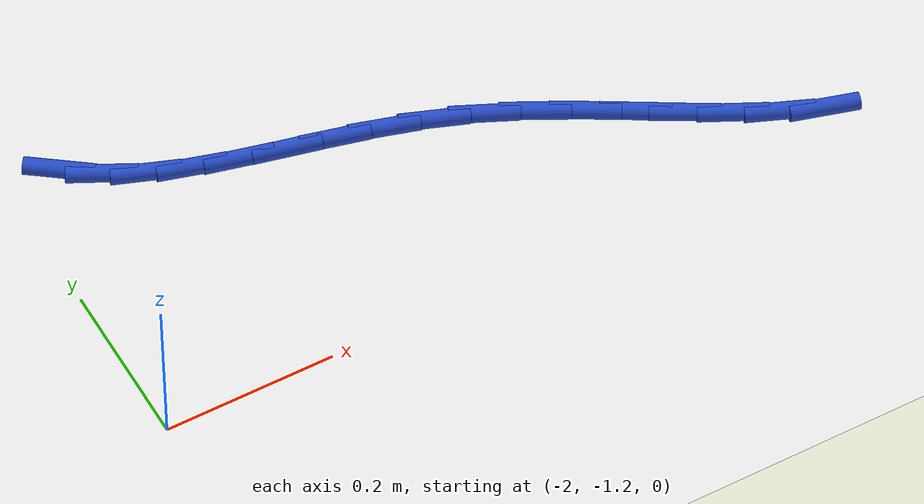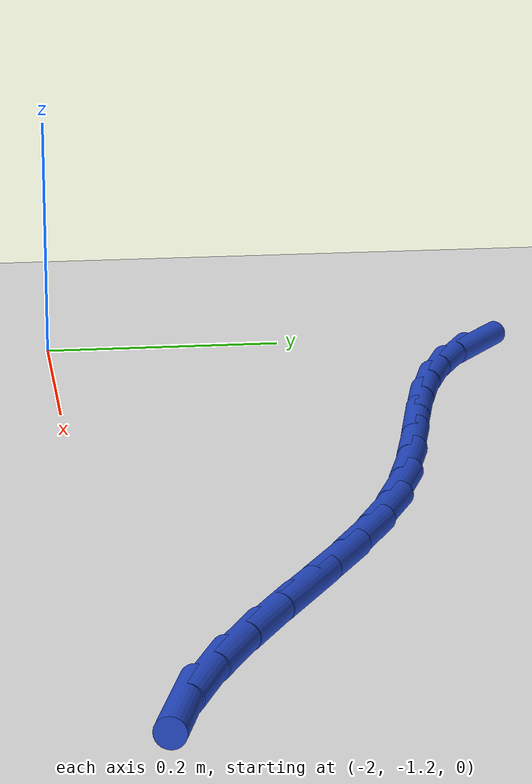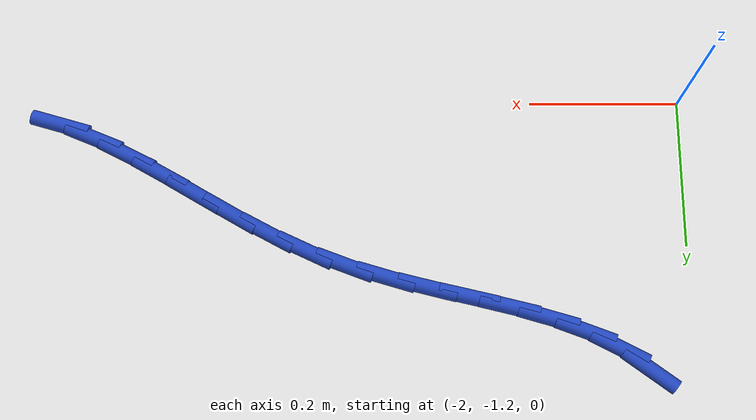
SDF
<sdf version="1.6">
 <world name="default">
  <model name="ground_plane">
   <static>1</static>
   <link name="link">
    <collision name="collision">
     <geometry><plane><normal>0 0 1</normal><size>100 100</size></plane></geometry>
     <surface><friction><ode><mu>100</mu><mu2>50</mu2></ode></friction></surface>
    </collision>
    <visual name="visual">
     <cast_shadows>0</cast_shadows>
     <geometry><plane><normal>0 0 1</normal><size>100 100</size></plane></geometry>
     <material>
      <script><uri>file://media/materials/scripts/gazebo.material</uri><name>Gazebo/WhiteGlow</name></script>
     </material>
    </visual>
   </link>
  </model>
  <model name="line">
   <link name="link_80">
    <pose>-1.9409610615038957 -0.835078091617651 0.01 0 1.57 -0.6349205361806385</pose>
    <collision name="collision">
     <geometry><cylinder><radius>0.01</radius><length>0.08</length></cylinder></geometry>
    </collision>
    <visual name="visual">
     <material>
      <script><name>Gazebo/Blue</name><uri>file://media/materials/scripts/gazebo.material</uri></script>
     </material>
     <geometry><cylinder><radius>0.01</radius><length>0.08</length></cylinder></geometry>
    </visual>
   </link>
   <link name="link_81">
    <pose>-1.9031851654351613 -0.8629067729834646 0.01 0 1.57 -0.47545376433622555</pose>
    <collision name="collision">
     <geometry><cylinder><radius>0.01</radius><length>0.08</length></cylinder></geometry>
    </collision>
    <visual name="visual">
     <material>
      <script><name>Gazebo/Blue</name><uri>file://media/materials/scripts/gazebo.material</uri></script>
     </material>
     <geometry><cylinder><radius>0.01</radius><length>0.08</length></cylinder></geometry>
    </visual>
   </link>
   <link name="link_82">
    <pose>-1.8603655976631395 -0.8849522570788549 0.01 0 1.57 -0.3588351381512396</pose>
    <collision name="collision">
     <geometry><cylinder><radius>0.01</radius><length>0.08</length></cylinder></geometry>
    </collision>
    <visual name="visual">
     <material>
      <script><name>Gazebo/Blue</name><uri>file://media/materials/scripts/gazebo.material</uri></script>
     </material>
     <geometry><cylinder><radius>0.01</radius><length>0.08</length></cylinder></geometry>
    </visual>
   </link>
   <link name="link_83">
    <pose>-1.8134151307783253 -0.9025621346845695 0.01 0 1.57 -0.28241887345072186</pose>
    <collision name="collision">
     <geometry><cylinder><radius>0.01</radius><length>0.08</length></cylinder></geometry>
    </collision>
    <visual name="visual">
     <material>
      <script><name>Gazebo/Blue</name><uri>file://media/materials/scripts/gazebo.material</uri></script>
     </material>
     <geometry><cylinder><radius>0.01</radius><length>0.08</length></cylinder></geometry>
    </visual>
   </link>
   <link name="link_84">
    <pose>-1.7632665685878584 -0.9171139956105313 0.01 0 1.57 -0.2408078761511981</pose>
    <collision name="collision">
     <geometry><cylinder><radius>0.01</radius><length>0.08</length></cylinder></geometry>
    </collision>
    <visual name="visual">
     <material>
      <script><name>Gazebo/Blue</name><uri>file://media/materials/scripts/gazebo.material</uri></script>
     </material>
     <geometry><cylinder><radius>0.01</radius><length>0.08</length></cylinder></geometry>
    </visual>
   </link>
   <link name="link_85">
    <pose>-1.7108527148988781 -0.929985429666665 0.01 0 1.57 -0.22972213244043924</pose>
    <collision name="collision">
     <geometry><cylinder><radius>0.01</radius><length>0.08</length></cylinder></geometry>
    </collision>
    <visual name="visual">
     <material>
      <script><name>Gazebo/Blue</name><uri>file://media/materials/scripts/gazebo.material</uri></script>
     </material>
     <geometry><cylinder><radius>0.01</radius><length>0.08</length></cylinder></geometry>
    </visual>
   </link>
   <link name="link_86">
    <pose>-1.657106373518521 -0.9425540266628943 0.01 0 1.57 -0.24683497186855474</pose>
    <collision name="collision">
     <geometry><cylinder><radius>0.01</radius><length>0.08</length></cylinder></geometry>
    </collision>
    <visual name="visual">
     <material>
      <script><name>Gazebo/Blue</name><uri>file://media/materials/scripts/gazebo.material</uri></script>
     </material>
     <geometry><cylinder><radius>0.01</radius><length>0.08</length></cylinder></geometry>
    </visual>
   </link>
   <link name="link_87">
    <pose>-1.6029603482539274 -0.9561973764091425 0.01 0 1.57 -0.29165905966030725</pose>
    <collision name="collision">
     <geometry><cylinder><radius>0.01</radius><length>0.08</length></cylinder></geometry>
    </collision>
    <visual name="visual">
     <material>
      <script><name>Gazebo/Blue</name><uri>file://media/materials/scripts/gazebo.material</uri></script>
     </material>
     <geometry><cylinder><radius>0.01</radius><length>0.08</length></cylinder></geometry>
    </visual>
   </link>
   <link name="link_88">
    <pose>-1.5493474429122347 -0.9722930687153338 0.01 0 1.57 -0.3642567691731395</pose>
    <collision name="collision">
     <geometry><cylinder><radius>0.01</radius><length>0.08</length></cylinder></geometry>
    </collision>
    <visual name="visual">
     <material>
      <script><name>Gazebo/Blue</name><uri>file://media/materials/scripts/gazebo.material</uri></script>
     </material>
     <geometry><cylinder><radius>0.01</radius><length>0.08</length></cylinder></geometry>
    </visual>
   </link>
   <link name="link_89">
    <pose>-1.497183749406189 -0.992181548556145 0.01 0 1.57 -0.44197632204330994</pose>
    <collision name="collision">
     <geometry><cylinder><radius>0.01</radius><length>0.08</length></cylinder></geometry>
    </collision>
    <visual name="visual">
     <material>
      <script><name>Gazebo/Blue</name><uri>file://media/materials/scripts/gazebo.material</uri></script>
     </material>
     <geometry><cylinder><radius>0.01</radius><length>0.08</length></cylinder></geometry>
    </visual>
   </link>
   <link name="link_90">
    <pose>-1.44684480487797 -1.0160017922144295 0.01 0 1.57 -0.4969489061325813</pose>
    <collision name="collision">
     <geometry><cylinder><radius>0.01</radius><length>0.08</length></cylinder></geometry>
    </collision>
    <visual name="visual">
     <material>
      <script><name>Gazebo/Blue</name><uri>file://media/materials/scripts/gazebo.material</uri></script>
     </material>
     <geometry><cylinder><radius>0.01</radius><length>0.08</length></cylinder></geometry>
    </visual>
   </link>
   <link name="link_91">
    <pose>-1.3980612624689825 -1.0424594190238794 0.01 0 1.57 -0.5278820999175212</pose>
    <collision name="collision">
     <geometry><cylinder><radius>0.01</radius><length>0.08</length></cylinder></geometry>
    </collision>
    <visual name="visual">
     <material>
      <script><name>Gazebo/Blue</name><uri>file://media/materials/scripts/gazebo.material</uri></script>
     </material>
     <geometry><cylinder><radius>0.01</radius><length>0.08</length></cylinder></geometry>
    </visual>
   </link>
   <link name="link_92">
    <pose>-1.3505259936615994 -1.0701760725900558 0.01 0 1.57 -0.5347325309358428</pose>
    <collision name="collision">
     <geometry><cylinder><radius>0.01</radius><length>0.08</length></cylinder></geometry>
    </collision>
    <visual name="visual">
     <material>
      <script><name>Gazebo/Blue</name><uri>file://media/materials/scripts/gazebo.material</uri></script>
     </material>
     <geometry><cylinder><radius>0.01</radius><length>0.08</length></cylinder></geometry>
    </visual>
   </link>
   <link name="link_93">
    <pose>-1.3039318699381932 -1.0977733965185215 0.01 0 1.57 -0.5164638592806371</pose>
    <collision name="collision">
     <geometry><cylinder><radius>0.01</radius><length>0.08</length></cylinder></geometry>
    </collision>
    <visual name="visual">
     <material>
      <script><name>Gazebo/Blue</name><uri>file://media/materials/scripts/gazebo.material</uri></script>
     </material>
     <geometry><cylinder><radius>0.01</radius><length>0.08</length></cylinder></geometry>
    </visual>
   </link>
   <link name="link_94">
    <pose>-1.257971762781135 -1.1238730344148378 0.01 0 1.57 -0.4707570323374574</pose>
    <collision name="collision">
     <geometry><cylinder><radius>0.01</radius><length>0.08</length></cylinder></geometry>
    </collision>
    <visual name="visual">
     <material>
      <script><name>Gazebo/Blue</name><uri>file://media/materials/scripts/gazebo.material</uri></script>
     </material>
     <geometry><cylinder><radius>0.01</radius><length>0.08</length></cylinder></geometry>
    </visual>
   </link>
   <link name="link_95">
    <pose>-1.2123385436727985 -1.1470966298845664 0.01 0 1.57 -0.39411075076043034</pose>
    <collision name="collision">
     <geometry><cylinder><radius>0.01</radius><length>0.08</length></cylinder></geometry>
    </collision>
    <visual name="visual">
     <material>
      <script><name>Gazebo/Blue</name><uri>file://media/materials/scripts/gazebo.material</uri></script>
     </material>
     <geometry><cylinder><radius>0.01</radius><length>0.08</length></cylinder></geometry>
    </visual>
   </link>
   <link name="link_96">
    <pose>-1.1667250840955554 -1.1660658265332693 0.01 0 1.57 -0.2827637904667593</pose>
    <collision name="collision">
     <geometry><cylinder><radius>0.01</radius><length>0.08</length></cylinder></geometry>
    </collision>
    <visual name="visual">
     <material>
      <script><name>Gazebo/Blue</name><uri>file://media/materials/scripts/gazebo.material</uri></script>
     </material>
     <geometry><cylinder><radius>0.01</radius><length>0.08</length></cylinder></geometry>
    </visual>
   </link>
  </model>
 </world>
</sdf>
